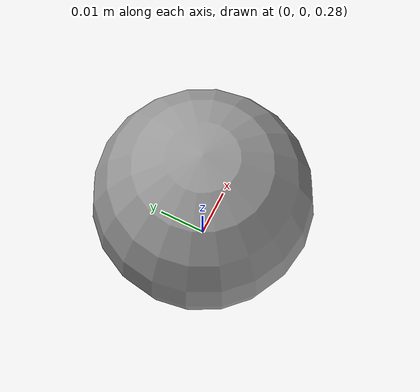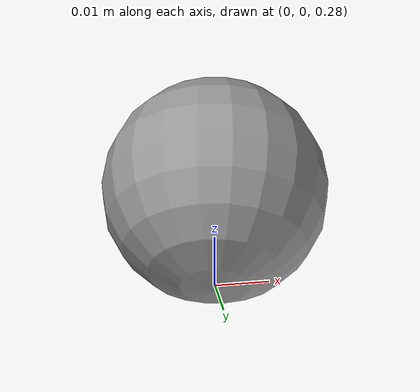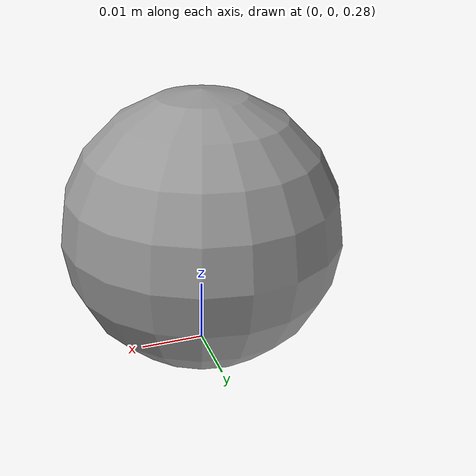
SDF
<?xml version='1.0'?>
<sdf version='1.7'>
  <model name='golf_ball'>
    <link name='link_0'>
      <inertial>
        <mass>0.0460639</mass>
        <inertia>
          <ixx>8.4e-06</ixx>
          <ixy>0</ixy>
          <ixz>0</ixz>
          <iyy>8.4e-06</iyy>
          <iyz>0</iyz>
          <izz>8.4e-06</izz>
        </inertia>
        <pose>0 0 0 0 -0 0</pose>
      </inertial>
      <pose>0 0 0.3 0 -0 0</pose>
      <gravity>1</gravity>
      <self_collide>0</self_collide>
      <kinematic>0</kinematic>
      <enable_wind>0</enable_wind>
      <visual name='visual'>
        <pose>0 0 0 0 -0 0</pose>
        <geometry>
          <sphere>
            <radius>0.02135</radius>
          </sphere>
        </geometry>
        <material>
          <lighting>1</lighting>
          <script>
            <uri>file://media/materials/scripts/gazebo.material</uri>
            <name>Gazebo/Grey</name>
          </script>
          <shader type='pixel'>
            <normal_map>__default__</normal_map>
          </shader>
          <ambient>1 1 1 1</ambient>
          <diffuse>1 1 1 1</diffuse>
          <specular>1 1 1 1</specular>
          <emissive>0 0 0 1</emissive>
        </material>
        <transparency>0</transparency>
        <cast_shadows>1</cast_shadows>
      </visual>
      <collision name='collision'>
        <laser_retro>0</laser_retro>
        <max_contacts>10</max_contacts>
        <pose>0 0 0 0 -0 0</pose>
        <geometry>
          <sphere>
            <radius>0.02135</radius>
          </sphere>
        </geometry>
        <surface>
          <friction>
            <ode>
              <mu>1</mu>
              <mu2>1</mu2>
              <fdir1>0 0 0</fdir1>
              <slip1>0</slip1>
              <slip2>0</slip2>
            </ode>
            <torsional>
              <coefficient>1</coefficient>
              <patch_radius>0</patch_radius>
              <surface_radius>0</surface_radius>
              <use_patch_radius>1</use_patch_radius>
              <ode>
                <slip>0</slip>
              </ode>
            </torsional>
          </friction>
          <bounce>
            <restitution_coefficient>0</restitution_coefficient>
            <threshold>1e+06</threshold>
          </bounce>
          <contact>
            <collide_without_contact>0</collide_without_contact>
            <collide_without_contact_bitmask>1</collide_without_contact_bitmask>
            <collide_bitmask>1</collide_bitmask>
            <ode>
              <soft_cfm>0</soft_cfm>
              <soft_erp>0.2</soft_erp>
              <kp>1e+13</kp>
              <kd>1</kd>
              <max_vel>0.01</max_vel>
              <min_depth>0</min_depth>
            </ode>
            <bullet>
              <split_impulse>1</split_impulse>
              <split_impulse_penetration_threshold>-0.01</split_impulse_penetration_threshold>
              <soft_cfm>0</soft_cfm>
              <soft_erp>0.2</soft_erp>
              <kp>1e+13</kp>
              <kd>1</kd>
            </bullet>
          </contact>
        </surface>
      </collision>
    </link>
    <static>0</static>
    <allow_auto_disable>1</allow_auto_disable>

    <plugin name="buoyancy" filename="libBuoyancyPlugin.so">
      <fluid_density>1000</fluid_density>
    </plugin>
  </model>
</sdf>
